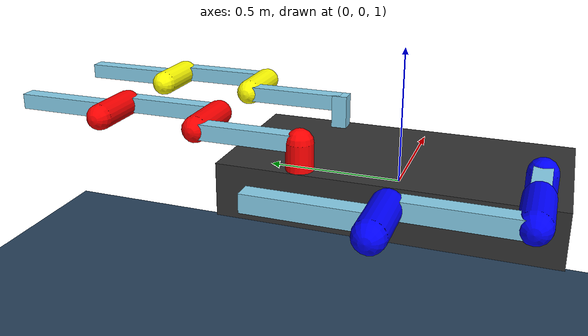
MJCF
<mujoco model="simple_joint">
    <asset>
        <texture name="grid" type="2d" builtin="checker" rgb1=".1 .2 .3"
                 rgb2=".2 .3 .4" width="300" height="300" mark="edge" markrgb=".2 .3 .4"/>
        <material name="grid" texture="grid" texrepeat="2 2" texuniform="true" reflectance=".2"/>
    </asset>

    <compiler angle="degree"/>
    <option timestep="0.001" integrator="RK4"/>

    <worldbody>
        <light pos="0 0 1" mode="trackcom"/>
        <geom name="ground" type="plane" size="5 5 10" material="grid"
            friction="1 0.05 0.0001"/>
        <camera name="top_down" pos="0 0 3" xyaxes="1 0 0 0 0 -1"/>

        <!-- 固定基座 -->
        <body name="gripper" pos="0 0 1">
            <geom name="base" type="box" size="0.3 0.6 0.1" rgba="0.2 0.2 0.2 1"/>

            <!-- Index Finger -->
            <body name="index_finger">
                <!-- 旋转关节 2 -->
                <body name="link_2" pos="-0.25 0.3 0">
                    <joint name="hinge_2" type="hinge" axis="0 0 1" damping="2.0" frictionloss="1.0"/>
                    <geom name="capsule_2" type="capsule" fromto="0 0 0  0 0 0.2" size="0.05" rgba="1 0 0 1"/>
                    <body name="bone_2" pos="0 0.2 0.2">
                        <geom name="bone_2" type="box" size="0.03 0.2 0.03" rgba="0.53 0.81 0.92 1"/>
                        <!-- 旋转关节 4 -->
                        <body name="link_4" pos="0 0.2 0">
                            <joint name="hinge_4" type="hinge" axis="1 0 0" damping="2.0" frictionloss="1.0"/>
                            <geom type="capsule" fromto="0 0 0  0.2 0 0" size="0.05" rgba="1 0 0 1"/>
                            <body name="bone_4" pos="0.2 0.2 0">
                                <geom type="box" size="0.03 0.2 0.03" rgba="0.53 0.81 0.92 1"/>
                                <!-- 旋转关节 3 -->
                                <body name="link_3" pos="0 0.2 0">
                                    <joint name="hinge_3" type="hinge" axis="1 0 0" damping="2.0" frictionloss="1.0"/>
                                    <geom type="capsule" fromto="0 0 0  -0.2 0 0" size="0.05" rgba="1 0 0 1"/>
                                    <body name="bone_3" pos="-0.1 0.2 0">
                                        <geom type="box" size="0.03 0.2 0.03" rgba="0.53 0.81 0.92 1"/>
                                    </body>
                                </body>
                            </body>
                        </body>
                    </body>
                </body>
            </body>

            <!-- Middle Finger -->
            <body name="middle_finger">
                <body name="bone_m">
                    <geom type="box" pos="0.25 0.3 0.13" size="0.03 0.03 0.1" rgba="0.53 0.81 0.92 1"/>
                    <geom type="box" pos="0.25 0.5 0.2" size="0.03 0.2 0.03" rgba="0.53 0.81 0.92 1"/>
                    <!-- 旋转关节 0 -->
                        <body name="link_0" pos="0.25 0.7 0.2">
                            <joint name="hinge_0" type="hinge" axis="1 0 0" damping="2.0" frictionloss="1.0"/>
                            <geom type="capsule" fromto="0 0 0  0.2 0 0" size="0.05" rgba="1 1 0 1"/>
                            <body name="bone_0" pos="0.2 0.2 0">
                                <geom type="box" size="0.03 0.2 0.03" rgba="0.53 0.81 0.92 1"/>
                                <!-- 旋转关节 1 -->
                                <body name="link_1" pos="0 0.2 0">
                                    <joint name="hinge_1" type="hinge" axis="1 0 0" damping="2.0" frictionloss="1.0"/>
                                    <geom type="capsule" fromto="0 0 0  -0.2 0 0" size="0.05" rgba="1 1 0 1"/>
                                    <body name="bone_1" pos="-0.1 0.2 0">
                                        <geom type="box" size="0.03 0.2 0.03" rgba="0.53 0.81 0.92 1"/>
                                    </body>
                                </body>
                            </body>
                        </body>
                </body>
            </body>

            <!-- Thumb -->
            <body name="thumb">
                <!-- 旋转关节 7 -->
                <body name="link_7" pos="-0.25 -0.5 0">
                    <joint name="hinge_7" type="hinge" axis="0 0 1" damping="2.0" frictionloss="1.0"/>
                    <geom name="capsule_7" type="capsule" fromto="0 0 0  0 0 0.2" size="0.05" rgba="0 0 1 1"/>
                    <body name="bone_7" pos="-0.2 0 0.2">
                        <geom type="box" size="0.2 0.03 0.03" rgba="0.53 0.81 0.92 1"/>
                        <!-- 旋转关节 6 -->
                        <body name="link_6" pos="-0.2 0 0">
                            <joint name="hinge_6" type="hinge" axis="1 0 0" damping="2.0" frictionloss="1.0"/>
                            <geom type="capsule" fromto="0 0 0  0.2 0 0" size="0.05" rgba="0 0 1 1"/>
                            <body name="bone_6" pos="0 0.2 0">
                                <geom type="box" size="0.03 0.2 0.03" rgba="0.53 0.81 0.92 1"/>
                                <!-- 旋转关节 5 -->
                                <body name="link_5" pos="0 0.2 0">
                                    <joint name="hinge_5" type="hinge" axis="1 0 0" damping="2.0" frictionloss="1.0"/>
                                    <geom type="capsule" fromto="0 0 0  -0.2 0 0" size="0.05" rgba="0 0 1 1"/>
                                    <body name="bone_5" pos="-0.1 0.2 0">
                                        <geom type="box" size="0.03 0.2 0.03" rgba="0.53 0.81 0.92 1"/>
                                    </body>
                                </body>
                            </body>
                        </body>
                    </body>
                </body>
            </body>

        </body>

    </worldbody>

    <actuator>
        <motor joint="hinge_0" ctrlrange="-500 500"/>
        <motor joint="hinge_1" ctrlrange="-500 500"/>
        <motor joint="hinge_2" ctrlrange="-500 500"/>
        <motor joint="hinge_3" ctrlrange="-500 500"/>
        <motor joint="hinge_4" ctrlrange="-500 500"/>
        <motor joint="hinge_5" ctrlrange="-500 500"/>
        <motor joint="hinge_6" ctrlrange="-500 500"/>
        <motor joint="hinge_7" ctrlrange="-500 500"/>
    </actuator>

</mujoco>
